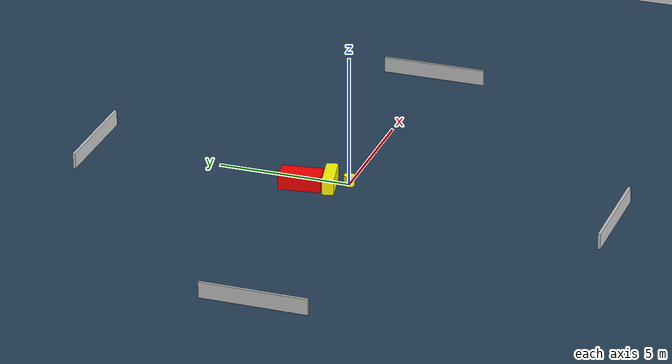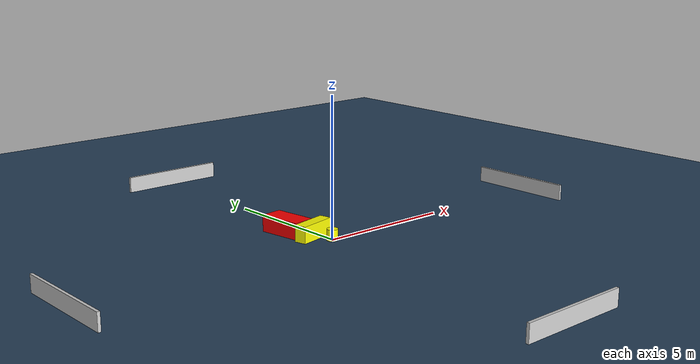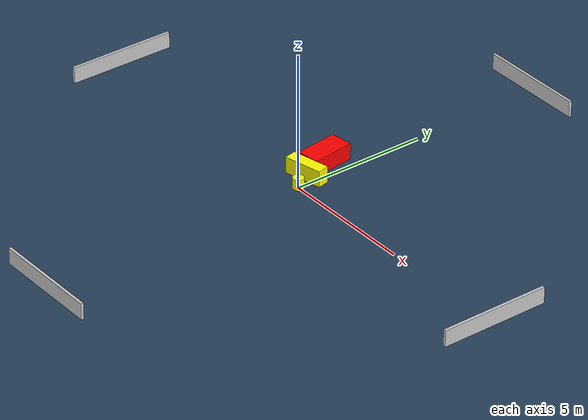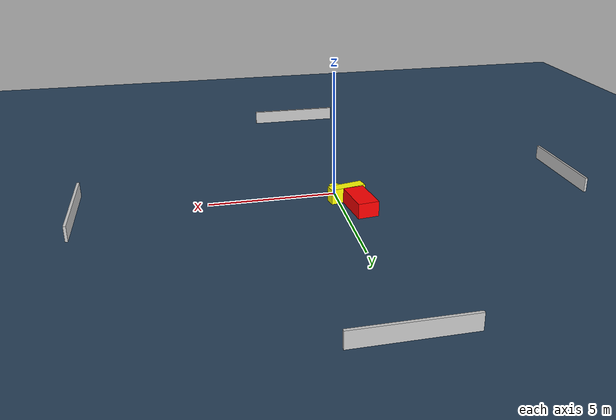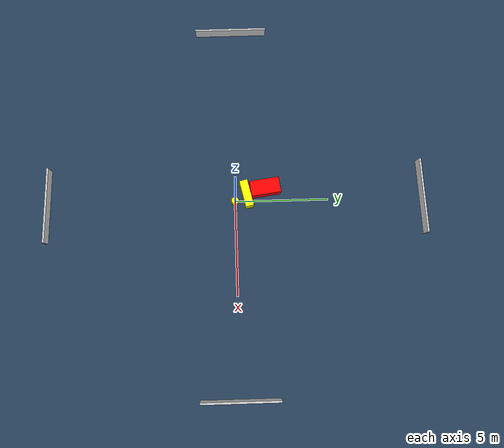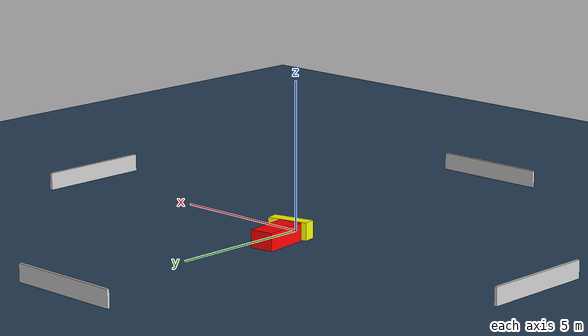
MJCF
<?xml version="1.0" ?>
<mujoco model="generated_environment">
  <option timestep="0.01" integrator="RK4" cone="elliptic"/>
  <default>
    <geom density="1"/>
  </default>
  <asset>
    <texture builtin="gradient" height="3072" name="skybox" rgb1="0.3 0.5 0.7" rgb2="0 0 0" type="skybox" width="512"/>
    <texture builtin="checker" height="300" name="groundplane" rgb1="0.2 0.3 0.4" rgb2="0.1 0.2 0.3" type="2d" width="300"/>
    <material name="groundplane" reflectance="0.2" texrepeat="5 5" texture="groundplane"/>
  </asset>
  <worldbody>
    <light dir="0 0 -1" directional="true" pos="0 0 1.5"/>
    <geom condim="3" friction="0.5 0.005 0.001" material="groundplane" name="floor" pos="0 0 0" size="0 0 0.05" type="plane"/>
    <body name="walls">
      <geom name="wall_1" condim="4" pos="-10.0 0.0 0.3" rgba="0.800000011920929 0.800000011920929 0.800000011920929 1.0" size="0.05 2.0 0.3" type="box"/>
      <geom name="wall_2" condim="4" pos="10.0 0.0 0.3" rgba="0.800000011920929 0.800000011920929 0.800000011920929 1.0" size="0.05 2.0 0.3" type="box"/>
      <geom name="wall_3" condim="4" pos="0.0 -10.0 0.3" rgba="0.800000011920929 0.800000011920929 0.800000011920929 1.0" size="2.0 0.05 0.3" type="box"/>
      <geom name="wall_4" condim="4" pos="0.0 10.0 0.3" rgba="0.800000011920929 0.800000011920929 0.800000011920929 1.0" size="2.0 0.05 0.3" type="box"/>
    </body>
    <body name="robot">
      <joint name="joint_x" type="slide" pos="0 0 0" axis="1 0 0"/>
      <joint name="joint_y" type="slide" pos="0 0 0" axis="0 1 0"/>
      <geom name="robot" type="cylinder" pos="0.0 0.0 0.2" size="0.2 0.2 0.0" mass="5.0" friction="1.0 0.005 0.0001" condim="4" rgba="1.0 1.0 0.0 1.0"/>
    </body>
    <body name="obstacle_1_movable">
      <geom name="obstacle_1_movable" condim="4" pos="-0.34861703509423864 0.6143239680436032 0.3" euler="0 0 282.5110129615168" friction="0.0 0.005 0.001" rgba="1.0 1.0 0.0 1.0" size="0.21991231548895826 0.716162813295047 0.3" type="box" mass="0.1"/>
      <joint type="free"/>
    </body>
    <body name="obstacle_2_static">
      <geom name="obstacle_2_static" condim="4" pos="-0.6772081489078761 1.614371610096263 0.3" euler="0 0 7.546208207415743" friction="0.0 0.005 0.001" rgba="1.0 0.0 0.0 1.0" size="0.4115107565816067 0.7935899133960114 0.3" type="box"/>
    </body>
  </worldbody>
  <actuator>
    <motor name="actuator_x" joint="joint_x" gear="1" ctrlrange="-1 1"/>
    <motor name="actuator_y" joint="joint_y" gear="1" ctrlrange="-1 1"/>
  </actuator>
</mujoco>
